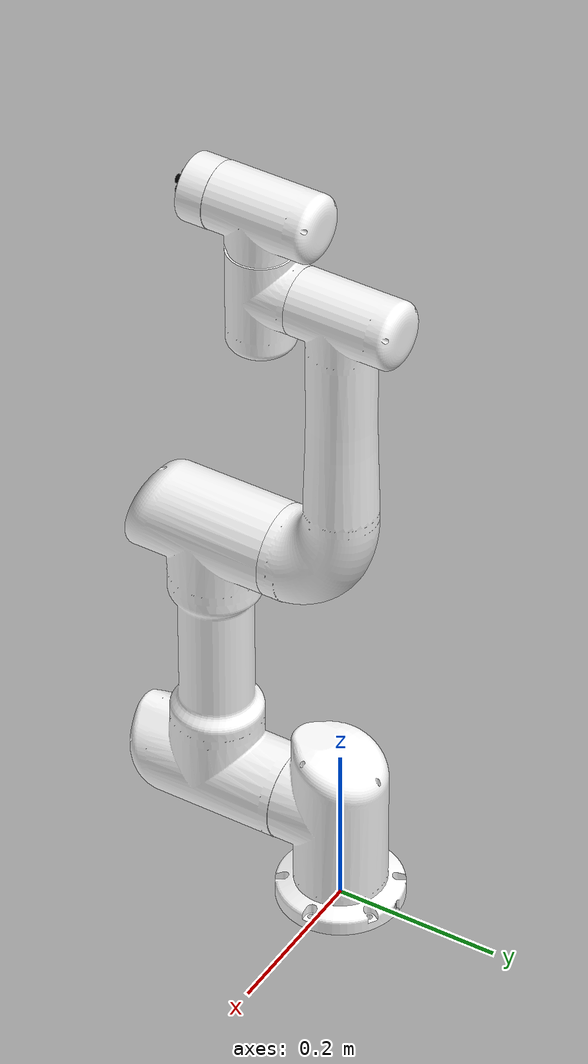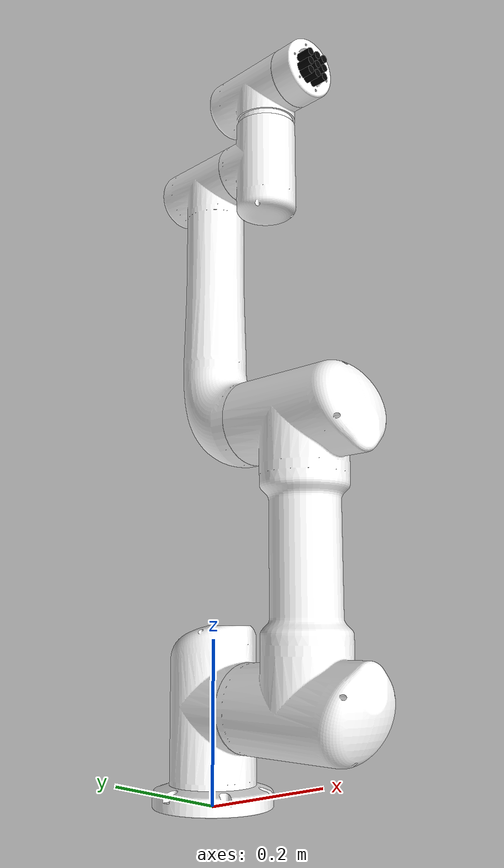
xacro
<?xml version="1.0" encoding="utf-8"?>
<robot name="probot_c800"  xmlns:xacro="http://ros.org/wiki/xacro">
  <xacro:property name="M_PI" value="3.1415926536"/>

  <link
    name="base_link">
    <inertial>
      <origin
        xyz="5.147E-06 -0.00046785 0.015896"
        rpy="0 0 0" />
      <mass
        value="10" />
      <inertia
        ixx="0.059509"
        ixy="-1.4288E-07"
        ixz="2.849E-08"
        iyy="0.00060823"
        iyz="-2.5808E-06"
        izz="0.0011221" />
    </inertial>
    <visual>
      <origin
        xyz="0 0 0"
        rpy="0 0 0" />
      <geometry>
        <mesh
          filename="package://probot_description/meshes/PROBOT_C800/base_link.STL" />
      </geometry>
      <material
        name="">
        <color
          rgba="1 1 1 1" />
      </material>
    </visual>
    <collision>
      <origin
        xyz="0 0 0"
        rpy="0 0 0" />
      <geometry>
        <mesh
          filename="package://probot_description/meshes/PROBOT_C800/base_link.STL" />
      </geometry>
    </collision>
  </link>
  <link
    name="link_1">
    <inertial>
      <origin
        xyz="0.00965262287162855 0.000106882257560006 -0.0934671109139962"
        rpy="0 0 0" />
      <mass
        value="6" />
      <inertia
        ixx="0.408865798627214"
        ixy="-5.96603151037548E-06"
        ixz="0.000373851909212829"
        iyy="0.00462847786874606"
        iyz="4.12539063355566E-06"
        izz="0.00336611341313754" />
    </inertial>
    <visual>
      <origin
        xyz="0 0 0"
        rpy="0 0 0" />
      <geometry>
        <mesh
          filename="package://probot_description/meshes/PROBOT_C800/link_1.STL" />
      </geometry>
      <material
        name="">
        <color
          rgba="1 1 1 1" />
      </material>
    </visual>
    <collision>
      <origin
        xyz="0 0 0"
        rpy="0 0 0" />
      <geometry>
        <mesh
          filename="package://probot_description/meshes/PROBOT_C800/link_1.STL" />
      </geometry>
    </collision>
  </link>
  <joint
    name="joint_1"
    type="revolute">
    <origin
      xyz="0 0 0.02685"
      rpy="${M_PI} 0 ${-M_PI/2}" />
    <parent
      link="base_link" />
    <child
      link="link_1" />
    <axis
      xyz="0 0 1" />
    <limit
      lower="-3"
      upper="3"
      effort="100"
      velocity="3" />
  </joint>
  <link
    name="link_2">
    <inertial>
      <origin
        xyz="0.0934750581217414 0.00103234502270023 -0.173879790200934"
        rpy="0 0 0" />
      <mass
        value="3" />
      <inertia
        ixx="0.121779083694365"
        ixy="-2.80230067509799E-05"
        ixz="9.97468437098008E-10"
        iyy="0.0147149627140393"
        iyz="-8.00783289230579E-08"
        izz="0.00958972857755924" />
    </inertial>
    <visual>
      <origin
        xyz="0 0 0"
        rpy="0 0 0" />
      <geometry>
        <mesh
          filename="package://probot_description/meshes/PROBOT_C800/link_2.STL" />
      </geometry>
      <material
        name="">
        <color
          rgba="1 1 1 1" />
      </material>
    </visual>
    <collision>
      <origin
        xyz="0 0 0"
        rpy="0 0 0" />
      <geometry>
        <mesh
          filename="package://probot_description/meshes/PROBOT_C800/link_2.STL" />
      </geometry>
    </collision>
  </link>
  <joint
    name="joint_2"
    type="revolute">
    <origin
      xyz="0.06985 0.0 -0.09285"
      rpy="0 0 0" />
    <parent
      link="link_1" />
    <child
      link="link_2" />
    <axis
      xyz="1 0 0" />
    <limit
      lower="-3"
      upper="3"
      effort="100"
      velocity="3" />
  </joint>
  <link
    name="link_3">
    <inertial>
      <origin
        xyz="-0.0687118174770173 -0.000754378183272216 -0.185631913469604"
        rpy="0 0 0" />
      <mass
        value="1" />
      <inertia
        ixx="0.663956391078891"
        ixy="-2.71624301134228E-06"
        ixz="-0.000251322412392862"
        iyy="0.00692970951632879"
        iyz="-2.96259292810681E-06"
        izz="0.00245054455125903" />
    </inertial>
    <visual>
      <origin
        xyz="0 0 0"
        rpy="0 0 0" />
      <geometry>
        <mesh
          filename="package://probot_description/meshes/PROBOT_C800/link_3.STL" />
      </geometry>
      <material
        name="">
        <color
          rgba="1 1 1 1" />
      </material>
    </visual>
    <collision>
      <origin
        xyz="0 0 0"
        rpy="0 0 0" />
      <geometry>
        <mesh
          filename="package://probot_description/meshes/PROBOT_C800/link_3.STL" />
      </geometry>
    </collision>
  </link>
  <joint
    name="joint_3"
    type="revolute">
    <origin
      xyz="0 0 -0.3484"
      rpy="0 0 0" />
    <parent
      link="link_2" />
    <child
      link="link_3" />
    <axis
      xyz="1 0 0" />
    <limit
      lower="-3"
      upper="3"
      effort="100"
      velocity="3" />
  </joint>
  <link
    name="link_4">
    <inertial>
      <origin
        xyz="1.42558891115018E-07 0.011406732342618 -0.041125104941559"
        rpy="0 0 0" />
      <mass
        value="0.5" />
      <inertia
        ixx="0.790631110631163"
        ixy="1.14094804039212E-10"
        ixz="8.72089830829354E-10"
        iyy="0.000625170480739091"
        iyz="3.28279382060779E-12"
        izz="0.000711240090250443" />
    </inertial>
    <visual>
      <origin
        xyz="0 0 0"
        rpy="0 0 0" />
      <geometry>
        <mesh
          filename="package://probot_description/meshes/PROBOT_C800/link_4.STL" />
      </geometry>
      <material
        name="">
        <color
          rgba="1 1 1 1" />
      </material>
    </visual>
    <collision>
      <origin
        xyz="0 0 0"
        rpy="0 0 0" />
      <geometry>
        <mesh
          filename="package://probot_description/meshes/PROBOT_C800/link_4.STL" />
      </geometry>
    </collision>
  </link>
  <joint
    name="joint_4"
    type="revolute">
    <origin
      xyz="-0.01605 0.0 -0.3495"
      rpy="${M_PI/2} 0 ${-M_PI/2}" />
    <parent
      link="link_3" />
    <child
      link="link_4" />
    <axis
      xyz="0 0 1" />
    <limit
      lower="-3"
      upper="3"
      effort="100"
      velocity="3" />
  </joint>
  <link
    name="link_5">
    <inertial>
      <origin
        xyz="-0.0114844563632815 -0.000126834206554931 -0.0414064058202409"
        rpy="0 0 0" />
      <mass
        value="0.3" />
      <inertia
        ixx="0.621780696658123"
        ixy="-1.82724165631366E-06"
        ixz="6.97185313514566E-12"
        iyy="0.000787203265227848"
        iyz="-1.46862677962704E-10"
        izz="0.000704470727358158" />
    </inertial>
    <visual>
      <origin
        xyz="0 0 0"
        rpy="0 0 0" />
      <geometry>
        <mesh
          filename="package://probot_description/meshes/PROBOT_C800/link_5.STL" />
      </geometry>
      <material
        name="">
        <color
          rgba="1 1 1 1" />
      </material>
    </visual>
    <collision>
      <origin
        xyz="0 0 0"
        rpy="0 0 0" />
      <geometry>
        <mesh
          filename="package://probot_description/meshes/PROBOT_C800/link_5.STL" />
      </geometry>
    </collision>
  </link>
  <joint
    name="joint_5"
    type="revolute">
    <origin
      xyz="0 -0.0541 -0.0464"
      rpy="${-M_PI/2} ${M_PI/2} 0" />
    <parent
      link="link_4" />
    <child
      link="link_5" />
    <axis
      xyz="0 0 1" />
    <limit
      lower="-3"
      upper="3"
      effort="100"
      velocity="3" />
  </joint>
  <link
    name="link_6">
    <inertial>
      <origin
        xyz="0.014970141556978 0.000165329680690855 5.42196176844811E-09"
        rpy="0 0 0" />
      <mass
        value="0.138913647701422" />
      <inertia
        ixx="0.114113868764739"
        ixy="5.037705828088E-07"
        ixz="1.27793184454972E-11"
        iyy="6.850486862405E-05"
        iyz="-1.06418612094514E-09"
        izz="6.85002551423014E-05" />
    </inertial>
    <visual>
      <origin
        xyz="0 0 0"
        rpy="0 0 0" />
      <geometry>
        <mesh
          filename="package://probot_description/meshes/PROBOT_C800/link_6.STL" />
      </geometry>
      <material
        name="">
        <color
          rgba="1 1 1 1" />
      </material>
    </visual>
    <collision>
      <origin
        xyz="0 0 0"
        rpy="0 0 0" />
      <geometry>
        <mesh
          filename="package://probot_description/meshes/PROBOT_C800/link_6.STL" />
      </geometry>
    </collision>
  </link>
  <joint
    name="joint_6"
    type="revolute">
    <origin
      xyz="0.0501 0 -0.0464"
      rpy="0 0 0" />
    <parent
      link="link_5" />
    <child
      link="link_6" />
    <axis
      xyz="-1 0 0" />
    <limit
      lower="-3"
      upper="3"
      effort="100"
      velocity="3" />
  </joint>

  <link name="tool0"/>
  <joint name="joint_tool0" type="fixed">
    <origin xyz="0.03328 0 0" rpy="${-M_PI} 0 ${-M_PI/2}" />
    <parent link="link_6" />
    <child link="tool0" />
  </joint>

    <link name="vacuum_gripper">
      <gravity>0</gravity>
      <visual>
        <origin rpy="0 0 0" xyz="0 0 0"/>
        <geometry>
          <cylinder radius="0.005" length="0.02"/>
        </geometry>
        <material name="transparent">
          <color rgba="0 0 0 0"/>
        </material>
      </visual>
      <inertial>
        <origin rpy="0 0 0" xyz="0.000000 0.000000 0.000000"/>
        <mass value="0.0001"/>
        <inertia ixx="1e-08" ixy="0" ixz="0" iyy="1e-08" iyz="0" izz="1e-08"/>
      </inertial>
    </link>

    <joint name="gripper_joint" type="revolute">
      <axis xyz="1 0 0" />
      <parent link="link_6" />
      <child link="vacuum_gripper" />
      <origin rpy="0 1.5708 0" xyz="0.035 0.0125 0" />
      <limit effort="50" velocity="50" lower="0" upper="0" />
      <dynamics damping="0.0" friction="10"/>
    </joint>

  <gazebo>
      <plugin name="gazebo_ros_vacuum_gripper" filename="libgazebo_ros_vacuum_gripper.so">
        <robotNamespace>/c800/vacuum_gripper</robotNamespace>
        <bodyName>vacuum_gripper</bodyName>
        <topicName>grasping</topicName>
	<maxForce>50</maxForce>
        <maxDistance>0.05</maxDistance>
        <minDistance>0.01</minDistance>
      </plugin>
  </gazebo>
<gazebo reference="vacuum_gripper">
            <mu1>50</mu1>
            <mu2>50</mu2>
 　　　　　 <minDepth>0.003</minDepth>
            <maxVel>0</maxVel>
            <kp>1000000.0</kp>
            <kd>1.0</kd>
            <material>Gazebo/Grey</material>
</gazebo>

<link name="vacuum_gripper1">
      <gravity>0</gravity>
      <visual>
        <origin rpy="0 0 0" xyz="0 0 0"/>
        <geometry>
          <cylinder radius="0.005" length="0.02"/>
        </geometry>
        <material name="transparent">
          <color rgba="0 0 0 0"/>
        </material>
      </visual>
      <inertial>
        <origin rpy="0 0 0" xyz="0.000000 0.000000 0.000000"/>
        <mass value="0.0001"/>
        <inertia ixx="1e-08" ixy="0" ixz="0" iyy="1e-08" iyz="0" izz="1e-08"/>
      </inertial>
    </link>

    <joint name="gripper_joint1" type="revolute">
      <axis xyz="1 0 0" />
      <parent link="link_6" />
      <child link="vacuum_gripper1" />
      <origin rpy="0 1.5708 0" xyz="0.035 -0.0125 0" />
      <limit effort="50" velocity="50" lower="0" upper="0" />
      <dynamics damping="0.0" friction="10"/>
    </joint>

  <gazebo>
      <plugin name="gazebo_ros_vacuum_gripper1" filename="libgazebo_ros_vacuum_gripper.so">
        <robotNamespace>/c800/vacuum_gripper1</robotNamespace>
        <bodyName>vacuum_gripper1</bodyName>
        <topicName>grasping1</topicName>
	<maxForce>50</maxForce>
        <maxDistance>0.05</maxDistance>
        <minDistance>0.01</minDistance>
      </plugin>
  </gazebo>
<gazebo reference="vacuum_gripper1">
            <mu1>50</mu1>
            <mu2>50</mu2>
 　　　　　 <minDepth>0.003</minDepth>
            <maxVel>0</maxVel>
            <kp>1000000.0</kp>
            <kd>1.0</kd>
            <material>Gazebo/Grey</material>
</gazebo>

    <link name="vacuum_gripper2">
      <gravity>0</gravity>
      <visual>
        <origin rpy="0 0 0" xyz="0 0 0"/>
        <geometry>
          <cylinder radius="0.005" length="0.02"/>
        </geometry>
        <material name="transparent">
          <color rgba="0 0 0 0"/>
        </material>
      </visual>
      <inertial>
        <origin rpy="0 0 0" xyz="0.000000 0.000000 0.000000"/>
        <mass value="0.0001"/>
        <inertia ixx="1e-08" ixy="0" ixz="0" iyy="1e-08" iyz="0" izz="1e-08"/>
      </inertial>
    </link>

    <joint name="gripper_joint2" type="revolute">
      <axis xyz="1 0 0" />
      <parent link="link_6" />
      <child link="vacuum_gripper2" />
      <origin rpy="0 1.5708 0" xyz="0.035 0 0.0125" />
      <limit effort="50" velocity="50" lower="0" upper="0" />
      <dynamics damping="0.0" friction="10"/>
    </joint>

  <gazebo>
      <plugin name="gazebo_ros_vacuum_gripper2" filename="libgazebo_ros_vacuum_gripper.so">
        <robotNamespace>/c800/vacuum_gripper2</robotNamespace>
        <bodyName>vacuum_gripper2</bodyName>
        <topicName>grasping2</topicName>
	<maxForce>50</maxForce>
        <maxDistance>0.05</maxDistance>
        <minDistance>0.01</minDistance>
      </plugin>
  </gazebo>
<gazebo reference="vacuum_gripper2">
            <mu1>50</mu1>
            <mu2>50</mu2>
 　　　　　 <minDepth>0.003</minDepth>
            <maxVel>0</maxVel>
            <kp>1000000.0</kp>
            <kd>1.0</kd>
            <material>Gazebo/Grey</material>
</gazebo>

    <link name="vacuum_gripper3">
      <gravity>0</gravity>
      <visual>
        <origin rpy="0 0 0" xyz="0 0 0"/>
        <geometry>
          <cylinder radius="0.005" length="0.02"/>
        </geometry>
        <material name="transparent">
          <color rgba="0 0 0 0"/>
        </material>
      </visual>
      <inertial>
        <origin rpy="0 0 0" xyz="0.000000 0.000000 0.000000"/>
        <mass value="0.0001"/>
        <inertia ixx="1e-08" ixy="0" ixz="0" iyy="1e-08" iyz="0" izz="1e-08"/>
      </inertial>
    </link>

    <joint name="gripper_joint3" type="revolute">
      <axis xyz="1 0 0" />
      <parent link="link_6" />
      <child link="vacuum_gripper3" />
      <origin rpy="0 1.5708 0" xyz="0.035 0 -0.0125" />
      <limit effort="50" velocity="50" lower="0" upper="0" />
      <dynamics damping="0.0" friction="10"/>
    </joint>

  <gazebo>
      <plugin name="gazebo_ros_vacuum_gripper3" filename="libgazebo_ros_vacuum_gripper.so">
        <robotNamespace>/c800/vacuum_gripper3</robotNamespace>
        <bodyName>vacuum_gripper3</bodyName>
        <topicName>grasping2</topicName>
	<maxForce>50</maxForce>
        <maxDistance>0.05</maxDistance>
        <minDistance>0.01</minDistance>
      </plugin>
  </gazebo>
<gazebo reference="vacuum_gripper3">
            <mu1>50</mu1>
            <mu2>50</mu2>
 　　　　　 <minDepth>0.003</minDepth>
            <maxVel>0</maxVel>
            <kp>1000000.0</kp>
            <kd>1.0</kd>
            <material>Gazebo/Grey</material>
</gazebo>

  <link name="vacuum_gripper4">
    <gravity>0</gravity>
    <visual>
      <origin rpy="0 0 0" xyz="0 0 0"/>
      <geometry>
        <cylinder radius="0.005" length="0.02"/>
      </geometry>
      <material name="transparent">
        <color rgba="0 0 0 0"/>
      </material>
    </visual>
    <inertial>
      <origin rpy="0 0 0" xyz="0.000000 0.000000 0.000000"/>
      <mass value="0.0001"/>
      <inertia ixx="1e-08" ixy="0" ixz="0" iyy="1e-08" iyz="0" izz="1e-08"/>
    </inertial>
  </link>

  <joint name="gripper_joint4" type="revolute">
    <axis xyz="1 0 0" />
    <parent link="link_6" />
    <child link="vacuum_gripper4" />
    <origin rpy="0 1.5708 0" xyz="0.035 0 0" />
    <limit effort="50" velocity="50" lower="0" upper="0" />
    <dynamics damping="0.0" friction="10"/>
  </joint>

  <gazebo>
    <plugin name="gazebo_ros_vacuum_gripper4" filename="libgazebo_ros_vacuum_gripper.so">
      <robotNamespace>/c800/vacuum_gripper4</robotNamespace>
      <bodyName>vacuum_gripper4</bodyName>
      <topicName>grasping4</topicName>
  <maxForce>50</maxForce>
      <maxDistance>0.05</maxDistance>
      <minDistance>0.01</minDistance>
    </plugin>
  </gazebo>
<gazebo reference="vacuum_gripper4">
            <mu1>50</mu1>
            <mu2>50</mu2>
 　　　　　 <minDepth>0.003</minDepth>
            <maxVel>0</maxVel>
            <kp>1000000.0</kp>
            <kd>1.0</kd>
            <material>Gazebo/Grey</material>
</gazebo>

  <link name="vacuum_gripper5">
    <gravity>0</gravity>
    <visual>
      <origin rpy="0 0 0" xyz="0 0 0"/>
      <geometry>
        <cylinder radius="0.005" length="0.02"/>
      </geometry>
      <material name="transparent">
        <color rgba="0 0 0 0"/>
      </material>
    </visual>
    <inertial>
      <origin rpy="0 0 0" xyz="0.000000 0.000000 0.000000"/>
      <mass value="0.0001"/>
      <inertia ixx="1e-08" ixy="0" ixz="0" iyy="1e-08" iyz="0" izz="1e-08"/>
    </inertial>
  </link>

  <joint name="gripper_joint5" type="revolute">
    <axis xyz="1 0 0" />
    <parent link="link_6" />
    <child link="vacuum_gripper5" />
    <origin rpy="0 1.5708 0" xyz="0.035 0.0125 0.0125" />
    <limit effort="50" velocity="50" lower="0" upper="0" />
    <dynamics damping="0.0" friction="10"/>
  </joint>

<gazebo>
    <plugin name="gazebo_ros_vacuum_gripper5" filename="libgazebo_ros_vacuum_gripper.so">
      <robotNamespace>/c800/vacuum_gripper5</robotNamespace>
      <bodyName>vacuum_gripper5</bodyName>
      <topicName>grasping5</topicName>
<maxForce>50</maxForce>
      <maxDistance>0.05</maxDistance>
      <minDistance>0.01</minDistance>
    </plugin>
</gazebo>
<gazebo reference="vacuum_gripper5">
            <mu1>50</mu1>
            <mu2>50</mu2>
 　　　　　 <minDepth>0.003</minDepth>
            <maxVel>0</maxVel>
            <kp>1000000.0</kp>
            <kd>1.0</kd>
            <material>Gazebo/Grey</material>
</gazebo>

  <link name="vacuum_gripper6">
    <gravity>0</gravity>
    <visual>
      <origin rpy="0 0 0" xyz="0 0 0"/>
      <geometry>
        <cylinder radius="0.005" length="0.02"/>
      </geometry>
      <material name="transparent">
        <color rgba="0 0 0 0"/>
      </material>
    </visual>
    <inertial>
      <origin rpy="0 0 0" xyz="0.000000 0.000000 0.000000"/>
      <mass value="0.0001"/>
      <inertia ixx="1e-08" ixy="0" ixz="0" iyy="1e-08" iyz="0" izz="1e-08"/>
    </inertial>
  </link>

  <joint name="gripper_joint6" type="revolute">
    <axis xyz="1 0 0" />
    <parent link="link_6" />
    <child link="vacuum_gripper6" />
    <origin rpy="0 1.5708 0" xyz="0.035 -0.0125 0.0125" />
    <limit effort="50" velocity="50" lower="0" upper="0" />
    <dynamics damping="0.0" friction="10"/>
  </joint>

<gazebo>
    <plugin name="gazebo_ros_vacuum_gripper6" filename="libgazebo_ros_vacuum_gripper.so">
      <robotNamespace>/c800/vacuum_gripper6</robotNamespace>
      <bodyName>vacuum_gripper6</bodyName>
      <topicName>grasping6</topicName>
<maxForce>50</maxForce>
      <maxDistance>0.05</maxDistance>
      <minDistance>0.01</minDistance>
    </plugin>
</gazebo>
<gazebo reference="vacuum_gripper6">
            <mu1>50</mu1>
            <mu2>50</mu2>
 　　　　　 <minDepth>0.003</minDepth>
            <maxVel>0</maxVel>
            <kp>1000000.0</kp>
            <kd>1.0</kd>
            <material>Gazebo/Grey</material>
</gazebo>

  <link name="vacuum_gripper7">
    <gravity>0</gravity>
    <visual>
      <origin rpy="0 0 0" xyz="0 0 0"/>
      <geometry>
        <cylinder radius="0.005" length="0.02"/>
      </geometry>
      <material name="transparent">
        <color rgba="0 0 0 0"/>
      </material>
    </visual>
    <inertial>
      <origin rpy="0 0 0" xyz="0.000000 0.000000 0.000000"/>
      <mass value="0.0001"/>
      <inertia ixx="1e-08" ixy="0" ixz="0" iyy="1e-08" iyz="0" izz="1e-08"/>
    </inertial>
  </link>

  <joint name="gripper_joint7" type="revolute">
    <axis xyz="1 0 0" />
    <parent link="link_6" />
    <child link="vacuum_gripper7" />
    <origin rpy="0 1.5708 0" xyz="0.035 0.0125 -0.0125" />
    <limit effort="50" velocity="50" lower="0" upper="0" />
    <dynamics damping="0.0" friction="10"/>
  </joint>

<gazebo>
    <plugin name="gazebo_ros_vacuum_gripper7" filename="libgazebo_ros_vacuum_gripper.so">
      <robotNamespace>/c800/vacuum_gripper7</robotNamespace>
      <bodyName>vacuum_gripper7</bodyName>
      <topicName>grasping7</topicName>
<maxForce>50</maxForce>
      <maxDistance>0.05</maxDistance>
      <minDistance>0.01</minDistance>
    </plugin>
</gazebo>
<gazebo reference="vacuum_gripper7">
            <mu1>50</mu1>
            <mu2>50</mu2>
 　　　　　 <minDepth>0.003</minDepth>
            <maxVel>0</maxVel>
            <kp>1000000.0</kp>
            <kd>1.0</kd>
            <material>Gazebo/Grey</material>
</gazebo>

  <link name="vacuum_gripper8">
    <gravity>0</gravity>
    <visual>
      <origin rpy="0 0 0" xyz="0 0 0"/>
      <geometry>
        <cylinder radius="0.005" length="0.02"/>
      </geometry>
      <material name="transparent">
        <color rgba="0 0 0 0"/>
      </material>
    </visual>
    <inertial>
      <origin rpy="0 0 0" xyz="0.000000 0.000000 0.000000"/>
      <mass value="0.0001"/>
      <inertia ixx="1e-08" ixy="0" ixz="0" iyy="1e-08" iyz="0" izz="1e-08"/>
    </inertial>
  </link>

  <joint name="gripper_joint8" type="revolute">
    <axis xyz="1 0 0" />
    <parent link="link_6" />
    <child link="vacuum_gripper8" />
    <origin rpy="0 1.5708 0" xyz="0.035 -0.0125 -0.0125" />
    <limit effort="50" velocity="50" lower="0" upper="0" />
    <dynamics damping="0.0" friction="10"/>
  </joint>

<gazebo>
    <plugin name="gazebo_ros_vacuum_gripper8" filename="libgazebo_ros_vacuum_gripper.so">
      <robotNamespace>/c800/vacuum_gripper8</robotNamespace>
      <bodyName>vacuum_gripper8</bodyName>
      <topicName>grasping8</topicName>
<maxForce>50</maxForce>
      <maxDistance>0.05</maxDistance>
      <minDistance>0.01</minDistance>
    </plugin>
</gazebo>
<gazebo reference="vacuum_gripper8">
            <mu1>50</mu1>
            <mu2>50</mu2>
 　　　　　 <minDepth>0.003</minDepth>
            <maxVel>0</maxVel>
            <kp>1000000.0</kp>
            <kd>1.0</kd>
            <material>Gazebo/Grey</material>
</gazebo>
  <!-- Transmissions for ROS Control -->
  <xacro:macro name="transmission_block" params="joint_name">
    <transmission name="tran1">
      <type>transmission_interface/SimpleTransmission</type>
      <joint name="${joint_name}">
        <hardwareInterface>hardware_interface/PositionJointInterface</hardwareInterface>
      </joint>
      <actuator name="motor1">
        <hardwareInterface>hardware_interface/PositionJointInterface</hardwareInterface>
        <mechanicalReduction>1</mechanicalReduction>
      </actuator>
    </transmission>
  </xacro:macro>

  <xacro:transmission_block joint_name="joint_1"/>
  <xacro:transmission_block joint_name="joint_2"/>
  <xacro:transmission_block joint_name="joint_3"/>
  <xacro:transmission_block joint_name="joint_4"/>
  <xacro:transmission_block joint_name="joint_5"/>
  <xacro:transmission_block joint_name="joint_6"/>

  <!-- ros_control plugin -->
  <gazebo>
    <plugin name="gazebo_ros_control" filename="libgazebo_ros_control.so">
      <robotNamespace>/</robotNamespace>
      <robotSimType>gazebo_ros_control/DefaultRobotHWSim</robotSimType>
      <legacyModeNS>true</legacyModeNS>
    </plugin>
  </gazebo>
</robot>
